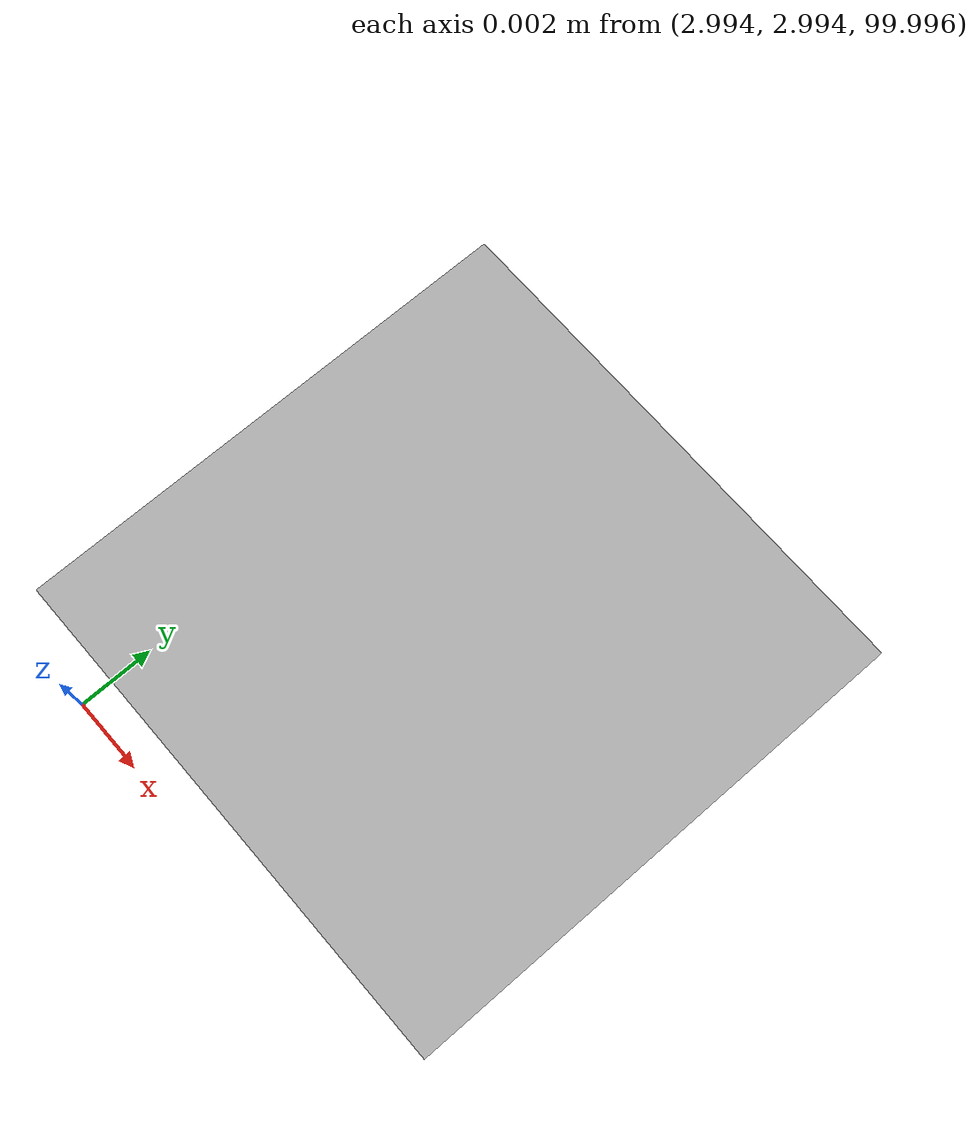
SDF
<?xml version="1.0" ?>
<sdf version="1.5">
  <world name="default">
    <!-- A global light source -->
    <include>
      <uri>model://sun</uri>
    </include>
    <!-- A ground plane -->
    <include>
      <uri>model://ground_plane</uri>
    </include>

    <!-- Global light source -->

    <model name="1_box">
      <static>true</static>

      <link name="box">
        <pose frame=''>3 3 100 0 0 0.0</pose>

        <collision name="collision">
          <geometry>
            <box>
              <size>0.01 0.01 0.01</size>
            </box>
          </geometry>
        </collision>
        <visual name="visual">
          <geometry>
            <box>
              <size>0.01 0.01 0.01</size>
            </box>
          </geometry>
        </visual>
      </link>

      <plugin name="p3d" filename="libgazebo_ros_p3d.so">
        <robotNamespace>/box_1</robotNamespace>
        <bodyName>box</bodyName>
        <topicName>/box_1/base_pose_ground_truth</topicName>
        <frameName>map</frameName>
        <updateRate>100.0</updateRate>
        <xyzOffsets>0 0 0</xyzOffsets>
        <rpyOffsets>0 0 0</rpyOffsets>
      </plugin>

    </model>

    <physics name='default_physics' default='0' type='ode'>
      <gravity>0 0 -9.8066</gravity>
      <ode>
        <solver>
          <type>quick</type>
          <iters>10</iters>
          <sor>1.3</sor>
          <use_dynamic_moi_rescaling>0</use_dynamic_moi_rescaling>
        </solver>
        <constraints>
          <cfm>0</cfm>
          <erp>0.2</erp>
          <contact_max_correcting_vel>100</contact_max_correcting_vel>
          <contact_surface_layer>0.001</contact_surface_layer>
        </constraints>
      </ode>
      <max_step_size>0.004</max_step_size>
      <real_time_factor>1</real_time_factor>
      <real_time_update_rate>250</real_time_update_rate>
      <magnetic_field>6.0e-6 2.3e-5 -4.2e-5</magnetic_field>
    </physics>
  </world>
</sdf>
